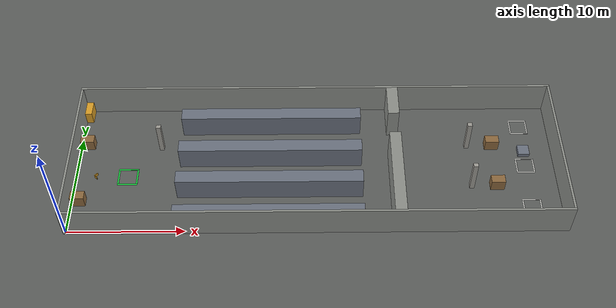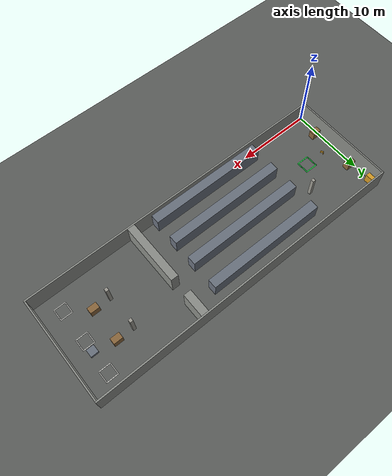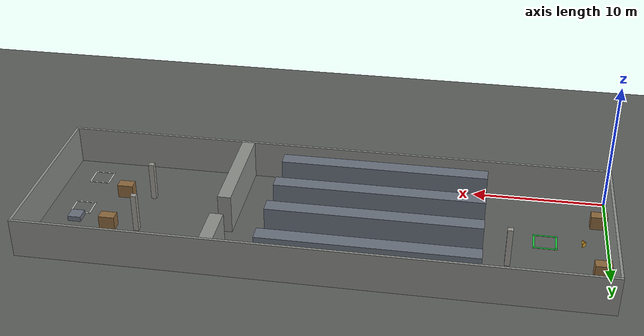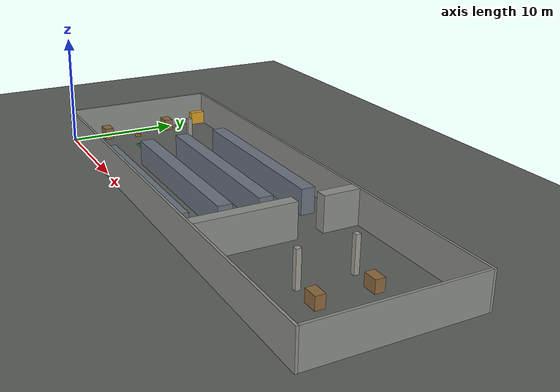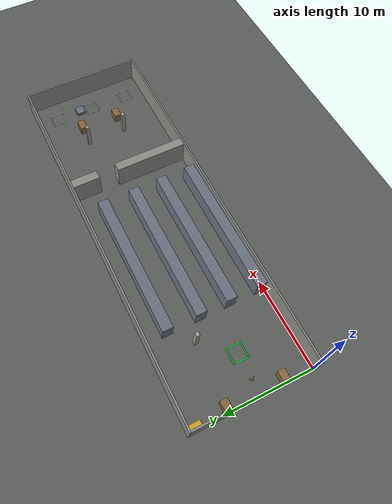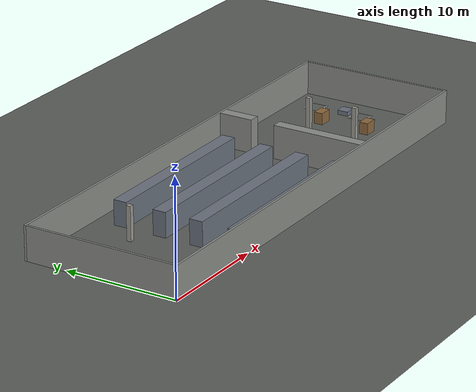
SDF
<?xml version="1.0"?>
<sdf version="1.10">
  <world name="test_track.mir250_class">

    <physics name="default" type="ignored">
      <max_step_size>0.004</max_step_size>
      <real_time_factor>1.0</real_time_factor>
    </physics>

    <plugin filename="gz-sim-physics-system"
            name="gz::sim::systems::Physics"/>
    <plugin filename="gz-sim-user-commands-system"
            name="gz::sim::systems::UserCommands"/>
    <plugin filename="gz-sim-scene-broadcaster-system"
            name="gz::sim::systems::SceneBroadcaster"/>
    <plugin filename="gz-sim-sensors-system"
            name="gz::sim::systems::Sensors">
      <render_engine>ogre2</render_engine>
    </plugin>
    <plugin filename="gz-sim-imu-system"
            name="gz::sim::systems::Imu"/>
    <plugin filename="gz-sim-contact-system"
            name="gz::sim::systems::Contact"/>

    <scene>
      <ambient>0.6 0.6 0.6 1</ambient>
      <background>0.75 0.78 0.82 1</background>
      <shadows>false</shadows>
    </scene>

    <light type="directional" name="sun">
      <pose>0 0 10 0 0 0</pose>
      <diffuse>0.9 0.9 0.9 1</diffuse>
      <specular>0.1 0.1 0.1 1</specular>
      <direction>-0.4 0.2 -0.9</direction>
      <cast_shadows>false</cast_shadows>
    </light>

    <model name="ground_plane">
      <static>true</static>
      <pose>21.000 6.778 0 0 0 0</pose>
      <link name="link">
        <collision name="collision">
          <geometry><plane><normal>0 0 1</normal><size>62.0 62.0</size></plane></geometry>
        </collision>
        <visual name="visual">
          <geometry><plane><normal>0 0 1</normal><size>62.0 62.0</size></plane></geometry>
          <material>
            <ambient>0.32 0.33 0.32 1</ambient>
            <diffuse>0.36 0.37 0.36 1</diffuse>
          </material>
        </visual>
      </link>
    </model>

    <model name="wall_south">
      <static>true</static>
      <pose>21.0000 -0.1000 1.5000 0 0 0</pose>
      <link name="link">
        <collision name="collision">
          <geometry><box><size>42.4000 0.2000 3.0000</size></box></geometry>
        </collision>
        <visual name="visual">
          <geometry><box><size>42.4000 0.2000 3.0000</size></box></geometry>
          <material>
            <ambient>0.55 0.56 0.54 1</ambient>
            <diffuse>0.55 0.56 0.54 1</diffuse>
          </material>
        </visual>
      </link>
    </model>
    <model name="wall_north">
      <static>true</static>
      <pose>21.0000 13.6567 1.5000 0 0 0</pose>
      <link name="link">
        <collision name="collision">
          <geometry><box><size>42.4000 0.2000 3.0000</size></box></geometry>
        </collision>
        <visual name="visual">
          <geometry><box><size>42.4000 0.2000 3.0000</size></box></geometry>
          <material>
            <ambient>0.55 0.56 0.54 1</ambient>
            <diffuse>0.55 0.56 0.54 1</diffuse>
          </material>
        </visual>
      </link>
    </model>
    <model name="wall_west">
      <static>true</static>
      <pose>-0.1000 6.7783 1.5000 0 0 0</pose>
      <link name="link">
        <collision name="collision">
          <geometry><box><size>0.2000 13.5567 3.0000</size></box></geometry>
        </collision>
        <visual name="visual">
          <geometry><box><size>0.2000 13.5567 3.0000</size></box></geometry>
          <material>
            <ambient>0.55 0.56 0.54 1</ambient>
            <diffuse>0.55 0.56 0.54 1</diffuse>
          </material>
        </visual>
      </link>
    </model>
    <model name="wall_east">
      <static>true</static>
      <pose>42.1000 6.7783 1.5000 0 0 0</pose>
      <link name="link">
        <collision name="collision">
          <geometry><box><size>0.2000 13.5567 3.0000</size></box></geometry>
        </collision>
        <visual name="visual">
          <geometry><box><size>0.2000 13.5567 3.0000</size></box></geometry>
          <material>
            <ambient>0.55 0.56 0.54 1</ambient>
            <diffuse>0.55 0.56 0.54 1</diffuse>
          </material>
        </visual>
      </link>
    </model>
    <model name="rack_a">
      <static>true</static>
      <pose>17.0000 11.2067 1.1000 0 0 0</pose>
      <link name="link">
        <collision name="collision">
          <geometry><box><size>16.0000 1.2000 2.2000</size></box></geometry>
        </collision>
        <visual name="visual">
          <geometry><box><size>16.0000 1.2000 2.2000</size></box></geometry>
          <material>
            <ambient>0.42 0.45 0.50 1</ambient>
            <diffuse>0.42 0.45 0.50 1</diffuse>
          </material>
        </visual>
      </link>
    </model>
    <model name="rack_b">
      <static>true</static>
      <pose>17.0000 7.5045 1.1000 0 0 0</pose>
      <link name="link">
        <collision name="collision">
          <geometry><box><size>16.0000 1.2000 2.2000</size></box></geometry>
        </collision>
        <visual name="visual">
          <geometry><box><size>16.0000 1.2000 2.2000</size></box></geometry>
          <material>
            <ambient>0.42 0.45 0.50 1</ambient>
            <diffuse>0.42 0.45 0.50 1</diffuse>
          </material>
        </visual>
      </link>
    </model>
    <model name="rack_c">
      <static>true</static>
      <pose>17.0000 4.1022 1.1000 0 0 0</pose>
      <link name="link">
        <collision name="collision">
          <geometry><box><size>16.0000 1.2000 2.2000</size></box></geometry>
        </collision>
        <visual name="visual">
          <geometry><box><size>16.0000 1.2000 2.2000</size></box></geometry>
          <material>
            <ambient>0.42 0.45 0.50 1</ambient>
            <diffuse>0.42 0.45 0.50 1</diffuse>
          </material>
        </visual>
      </link>
    </model>
    <model name="rack_d">
      <static>true</static>
      <pose>17.0000 0.6000 1.1000 0 0 0</pose>
      <link name="link">
        <collision name="collision">
          <geometry><box><size>16.0000 1.2000 2.2000</size></box></geometry>
        </collision>
        <visual name="visual">
          <geometry><box><size>16.0000 1.2000 2.2000</size></box></geometry>
          <material>
            <ambient>0.42 0.45 0.50 1</ambient>
            <diffuse>0.42 0.45 0.50 1</diffuse>
          </material>
        </visual>
      </link>
    </model>
    <model name="door_block_north">
      <static>true</static>
      <pose>27.9022 12.0067 1.5000 0 0 0</pose>
      <link name="link">
        <collision name="collision">
          <geometry><box><size>1.0000 3.1000 3.0000</size></box></geometry>
        </collision>
        <visual name="visual">
          <geometry><box><size>1.0000 3.1000 3.0000</size></box></geometry>
          <material>
            <ambient>0.55 0.56 0.54 1</ambient>
            <diffuse>0.55 0.56 0.54 1</diffuse>
          </material>
        </visual>
      </link>
    </model>
    <model name="door_block_south">
      <static>true</static>
      <pose>27.9022 4.1272 1.5000 0 0 0</pose>
      <link name="link">
        <collision name="collision">
          <geometry><box><size>1.0000 8.2545 3.0000</size></box></geometry>
        </collision>
        <visual name="visual">
          <geometry><box><size>1.0000 8.2545 3.0000</size></box></geometry>
          <material>
            <ambient>0.55 0.56 0.54 1</ambient>
            <diffuse>0.55 0.56 0.54 1</diffuse>
          </material>
        </visual>
      </link>
    </model>
    <model name="dock_left">
      <static>true</static>
      <pose>1.7237 5.9271 0.1500 0 0 0.7854</pose>
      <link name="link">
        <collision name="collision">
          <geometry><box><size>0.3500 0.0500 0.3000</size></box></geometry>
        </collision>
        <visual name="visual">
          <geometry><box><size>0.3500 0.0500 0.3000</size></box></geometry>
          <material>
            <ambient>0.85 0.62 0.15 1</ambient>
            <diffuse>0.85 0.62 0.15 1</diffuse>
          </material>
        </visual>
      </link>
    </model>    <model name="dock_right">
      <static>true</static>
      <pose>1.7237 5.6796 0.1500 0 0 -0.7854</pose>
      <link name="link">
        <collision name="collision">
          <geometry><box><size>0.3500 0.0500 0.3000</size></box></geometry>
        </collision>
        <visual name="visual">
          <geometry><box><size>0.3500 0.0500 0.3000</size></box></geometry>
          <material>
            <ambient>0.85 0.62 0.15 1</ambient>
            <diffuse>0.85 0.62 0.15 1</diffuse>
          </material>
        </visual>
      </link>
    </model>    <model name="delivery_table">
      <static>true</static>
      <pose>39.5000 8.2783 0.2000 0 0 0</pose>
      <link name="link">
        <collision name="collision">
          <geometry><box><size>1.0000 1.0000 0.4000</size></box></geometry>
        </collision>
        <visual name="visual">
          <geometry><box><size>1.0000 1.0000 0.4000</size></box></geometry>
          <material>
            <ambient>0.42 0.45 0.50 1</ambient>
            <diffuse>0.42 0.45 0.50 1</diffuse>
          </material>
        </visual>
      </link>
    </model>
    <model name="mark_home">
      <static>true</static>
      <pose>4.5000 5.8033 0.005 0 0 0</pose>
      <link name="link">
        <visual name="bar0">
          <pose>0.0000 0.8100 0 0 0 0</pose>
          <geometry><box><size>1.7600 0.1400 0.010</size></box></geometry>
          <material>
            <ambient>0.10 0.80 0.25 1</ambient>
            <diffuse>0.10 0.80 0.25 1</diffuse>
            <emissive>0.03 0.24 0.07 1</emissive>
          </material>
        </visual>
        <visual name="bar1">
          <pose>0.0000 -0.8100 0 0 0 0</pose>
          <geometry><box><size>1.7600 0.1400 0.010</size></box></geometry>
          <material>
            <ambient>0.10 0.80 0.25 1</ambient>
            <diffuse>0.10 0.80 0.25 1</diffuse>
            <emissive>0.03 0.24 0.07 1</emissive>
          </material>
        </visual>
        <visual name="bar2">
          <pose>-0.8100 0.0000 0 0 0 0</pose>
          <geometry><box><size>0.1400 1.4800 0.010</size></box></geometry>
          <material>
            <ambient>0.10 0.80 0.25 1</ambient>
            <diffuse>0.10 0.80 0.25 1</diffuse>
            <emissive>0.03 0.24 0.07 1</emissive>
          </material>
        </visual>
        <visual name="bar3">
          <pose>0.8100 0.0000 0 0 0 0</pose>
          <geometry><box><size>0.1400 1.4800 0.010</size></box></geometry>
          <material>
            <ambient>0.10 0.80 0.25 1</ambient>
            <diffuse>0.10 0.80 0.25 1</diffuse>
            <emissive>0.03 0.24 0.07 1</emissive>
          </material>
        </visual>
      </link>
    </model>
    <model name="mark_bay_1">
      <static>true</static>
      <pose>39.5000 2.3000 0.005 0 0 0</pose>
      <link name="link">
        <visual name="bar0">
          <pose>0.0000 0.7500 0 0 0 0</pose>
          <geometry><box><size>1.6000 0.1000 0.010</size></box></geometry>
          <material>
            <ambient>0.92 0.92 0.90 1</ambient>
            <diffuse>0.92 0.92 0.90 1</diffuse>
            <emissive>0.28 0.28 0.27 1</emissive>
          </material>
        </visual>
        <visual name="bar1">
          <pose>0.0000 -0.7500 0 0 0 0</pose>
          <geometry><box><size>1.6000 0.1000 0.010</size></box></geometry>
          <material>
            <ambient>0.92 0.92 0.90 1</ambient>
            <diffuse>0.92 0.92 0.90 1</diffuse>
            <emissive>0.28 0.28 0.27 1</emissive>
          </material>
        </visual>
        <visual name="bar2">
          <pose>-0.7500 0.0000 0 0 0 0</pose>
          <geometry><box><size>0.1000 1.4000 0.010</size></box></geometry>
          <material>
            <ambient>0.92 0.92 0.90 1</ambient>
            <diffuse>0.92 0.92 0.90 1</diffuse>
            <emissive>0.28 0.28 0.27 1</emissive>
          </material>
        </visual>
        <visual name="bar3">
          <pose>0.7500 0.0000 0 0 0 0</pose>
          <geometry><box><size>0.1000 1.4000 0.010</size></box></geometry>
          <material>
            <ambient>0.92 0.92 0.90 1</ambient>
            <diffuse>0.92 0.92 0.90 1</diffuse>
            <emissive>0.28 0.28 0.27 1</emissive>
          </material>
        </visual>
      </link>
    </model>
    <model name="mark_bay_2">
      <static>true</static>
      <pose>39.5000 6.7783 0.005 0 0 0</pose>
      <link name="link">
        <visual name="bar0">
          <pose>0.0000 0.7500 0 0 0 0</pose>
          <geometry><box><size>1.6000 0.1000 0.010</size></box></geometry>
          <material>
            <ambient>0.92 0.92 0.90 1</ambient>
            <diffuse>0.92 0.92 0.90 1</diffuse>
            <emissive>0.28 0.28 0.27 1</emissive>
          </material>
        </visual>
        <visual name="bar1">
          <pose>0.0000 -0.7500 0 0 0 0</pose>
          <geometry><box><size>1.6000 0.1000 0.010</size></box></geometry>
          <material>
            <ambient>0.92 0.92 0.90 1</ambient>
            <diffuse>0.92 0.92 0.90 1</diffuse>
            <emissive>0.28 0.28 0.27 1</emissive>
          </material>
        </visual>
        <visual name="bar2">
          <pose>-0.7500 0.0000 0 0 0 0</pose>
          <geometry><box><size>0.1000 1.4000 0.010</size></box></geometry>
          <material>
            <ambient>0.92 0.92 0.90 1</ambient>
            <diffuse>0.92 0.92 0.90 1</diffuse>
            <emissive>0.28 0.28 0.27 1</emissive>
          </material>
        </visual>
        <visual name="bar3">
          <pose>0.7500 0.0000 0 0 0 0</pose>
          <geometry><box><size>0.1000 1.4000 0.010</size></box></geometry>
          <material>
            <ambient>0.92 0.92 0.90 1</ambient>
            <diffuse>0.92 0.92 0.90 1</diffuse>
            <emissive>0.28 0.28 0.27 1</emissive>
          </material>
        </visual>
      </link>
    </model>
    <model name="mark_bay_3">
      <static>true</static>
      <pose>39.5000 11.2567 0.005 0 0 0</pose>
      <link name="link">
        <visual name="bar0">
          <pose>0.0000 0.7500 0 0 0 0</pose>
          <geometry><box><size>1.6000 0.1000 0.010</size></box></geometry>
          <material>
            <ambient>0.92 0.92 0.90 1</ambient>
            <diffuse>0.92 0.92 0.90 1</diffuse>
            <emissive>0.28 0.28 0.27 1</emissive>
          </material>
        </visual>
        <visual name="bar1">
          <pose>0.0000 -0.7500 0 0 0 0</pose>
          <geometry><box><size>1.6000 0.1000 0.010</size></box></geometry>
          <material>
            <ambient>0.92 0.92 0.90 1</ambient>
            <diffuse>0.92 0.92 0.90 1</diffuse>
            <emissive>0.28 0.28 0.27 1</emissive>
          </material>
        </visual>
        <visual name="bar2">
          <pose>-0.7500 0.0000 0 0 0 0</pose>
          <geometry><box><size>0.1000 1.4000 0.010</size></box></geometry>
          <material>
            <ambient>0.92 0.92 0.90 1</ambient>
            <diffuse>0.92 0.92 0.90 1</diffuse>
            <emissive>0.28 0.28 0.27 1</emissive>
          </material>
        </visual>
        <visual name="bar3">
          <pose>0.7500 0.0000 0 0 0 0</pose>
          <geometry><box><size>0.1000 1.4000 0.010</size></box></geometry>
          <material>
            <ambient>0.92 0.92 0.90 1</ambient>
            <diffuse>0.92 0.92 0.90 1</diffuse>
            <emissive>0.28 0.28 0.27 1</emissive>
          </material>
        </visual>
      </link>
    </model>
    <model name="column_w1">
      <static>true</static>
      <pose>7.2000 9.0378 1.5000 0 0 0</pose>
      <link name="link">
        <collision name="collision">
          <geometry><box><size>0.4000 0.4000 3.0000</size></box></geometry>
        </collision>
        <visual name="visual">
          <geometry><box><size>0.4000 0.4000 3.0000</size></box></geometry>
          <material>
            <ambient>0.62 0.61 0.58 1</ambient>
            <diffuse>0.62 0.61 0.58 1</diffuse>
          </material>
        </visual>
      </link>
    </model>
    <model name="column_e0">
      <static>true</static>
      <pose>34.5000 4.5189 1.5000 0 0 0</pose>
      <link name="link">
        <collision name="collision">
          <geometry><box><size>0.4000 0.4000 3.0000</size></box></geometry>
        </collision>
        <visual name="visual">
          <geometry><box><size>0.4000 0.4000 3.0000</size></box></geometry>
          <material>
            <ambient>0.62 0.61 0.58 1</ambient>
            <diffuse>0.62 0.61 0.58 1</diffuse>
          </material>
        </visual>
      </link>
    </model>
    <model name="column_e1">
      <static>true</static>
      <pose>34.5000 9.0378 1.5000 0 0 0</pose>
      <link name="link">
        <collision name="collision">
          <geometry><box><size>0.4000 0.4000 3.0000</size></box></geometry>
        </collision>
        <visual name="visual">
          <geometry><box><size>0.4000 0.4000 3.0000</size></box></geometry>
          <material>
            <ambient>0.62 0.61 0.58 1</ambient>
            <diffuse>0.62 0.61 0.58 1</diffuse>
          </material>
        </visual>
      </link>
    </model>
    <model name="pallet_w0">
      <static>true</static>
      <pose>0.6000 3.1180 0.5250 0 0 0</pose>
      <link name="link">
        <collision name="collision">
          <geometry><box><size>1.2000 0.8000 1.0500</size></box></geometry>
        </collision>
        <visual name="visual">
          <geometry><box><size>1.2000 0.8000 1.0500</size></box></geometry>
          <material>
            <ambient>0.55 0.41 0.24 1</ambient>
            <diffuse>0.55 0.41 0.24 1</diffuse>
          </material>
        </visual>
      </link>
    </model>
    <model name="pallet_w1">
      <static>true</static>
      <pose>0.6000 9.3541 0.5250 0 0 0</pose>
      <link name="link">
        <collision name="collision">
          <geometry><box><size>1.2000 0.8000 1.0500</size></box></geometry>
        </collision>
        <visual name="visual">
          <geometry><box><size>1.2000 0.8000 1.0500</size></box></geometry>
          <material>
            <ambient>0.55 0.41 0.24 1</ambient>
            <diffuse>0.55 0.41 0.24 1</diffuse>
          </material>
        </visual>
      </link>
    </model>
    <model name="pallet_bay0">
      <static>true</static>
      <pose>36.7000 4.5392 0.5250 0 0 0</pose>
      <link name="link">
        <collision name="collision">
          <geometry><box><size>1.2000 0.8000 1.0500</size></box></geometry>
        </collision>
        <visual name="visual">
          <geometry><box><size>1.2000 0.8000 1.0500</size></box></geometry>
          <material>
            <ambient>0.55 0.41 0.24 1</ambient>
            <diffuse>0.55 0.41 0.24 1</diffuse>
          </material>
        </visual>
      </link>
    </model>
    <model name="pallet_bay1">
      <static>true</static>
      <pose>36.7000 9.0175 0.5250 0 0 0</pose>
      <link name="link">
        <collision name="collision">
          <geometry><box><size>1.2000 0.8000 1.0500</size></box></geometry>
        </collision>
        <visual name="visual">
          <geometry><box><size>1.2000 0.8000 1.0500</size></box></geometry>
          <material>
            <ambient>0.55 0.41 0.24 1</ambient>
            <diffuse>0.55 0.41 0.24 1</diffuse>
          </material>
        </visual>
      </link>
    </model>
    <model name="charger">
      <static>true</static>
      <pose>0.3000 12.8567 0.6000 0 0 0</pose>
      <link name="link">
        <collision name="collision">
          <geometry><box><size>0.6000 1.4000 1.2000</size></box></geometry>
        </collision>
        <visual name="visual">
          <geometry><box><size>0.6000 1.4000 1.2000</size></box></geometry>
          <material>
            <ambient>0.85 0.62 0.15 1</ambient>
            <diffuse>0.85 0.62 0.15 1</diffuse>
          </material>
        </visual>
      </link>
    </model>
  </world>
</sdf>
